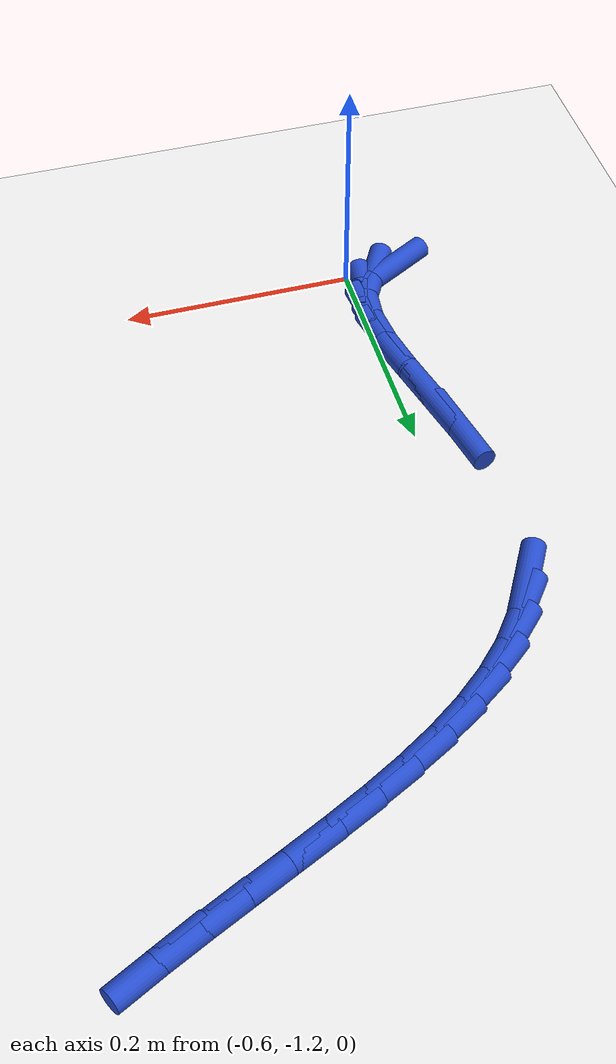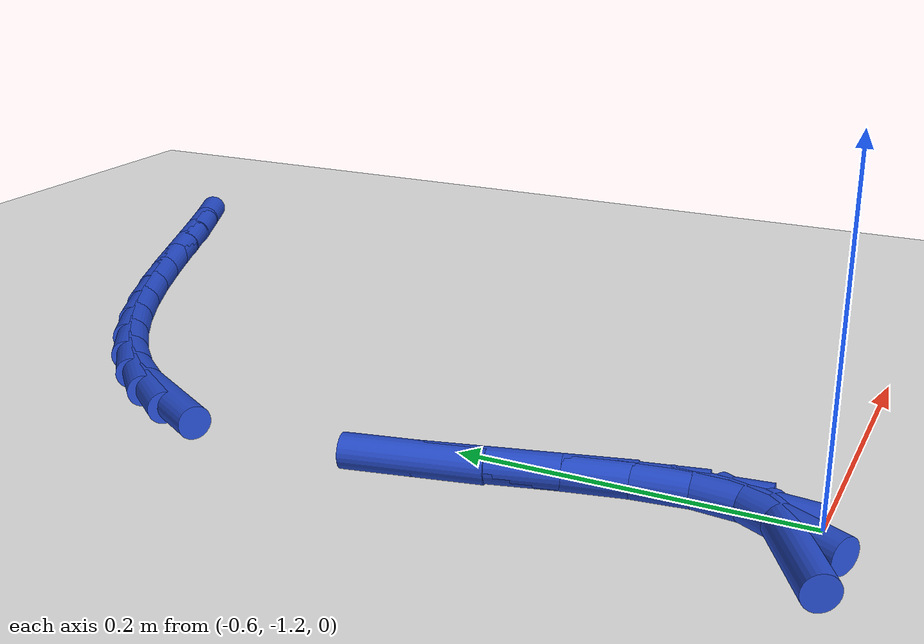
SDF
<sdf version="1.6">
 <world name="default">
  <model name="ground_plane">
   <static>1</static>
   <link name="link">
    <collision name="collision">
     <geometry><plane><normal>0 0 1</normal><size>100 100</size></plane></geometry>
     <surface><friction><ode><mu>100</mu><mu2>50</mu2></ode></friction></surface>
    </collision>
    <visual name="visual">
     <cast_shadows>0</cast_shadows>
     <geometry><plane><normal>0 0 1</normal><size>100 100</size></plane></geometry>
     <material>
      <script><uri>file://media/materials/scripts/gazebo.material</uri><name>Gazebo/WhiteGlow</name></script>
     </material>
    </visual>
   </link>
  </model>
  <model name="line">
   <link name="link_204">
    <pose>-0.6393027703442349 -1.193815876135804 0.01 0 1.57 0.5169539969103331</pose>
    <collision name="collision">
     <geometry><cylinder><radius>0.01</radius><length>0.08</length></cylinder></geometry>
    </collision>
    <visual name="visual">
     <material>
      <script><name>Gazebo/Blue</name><uri>file://media/materials/scripts/gazebo.material</uri></script>
     </material>
     <geometry><cylinder><radius>0.01</radius><length>0.08</length></cylinder></geometry>
    </visual>
   </link>
   <link name="link_205">
    <pose>-0.6184387353778499 -1.1819541653858383 0.01 0 1.57 1.0733820155886629</pose>
    <collision name="collision">
     <geometry><cylinder><radius>0.01</radius><length>0.08</length></cylinder></geometry>
    </collision>
    <visual name="visual">
     <material>
      <script><name>Gazebo/Blue</name><uri>file://media/materials/scripts/gazebo.material</uri></script>
     </material>
     <geometry><cylinder><radius>0.01</radius><length>0.08</length></cylinder></geometry>
    </visual>
   </link>
   <link name="link_206">
    <pose>-0.6075629247144526 -1.1619231977633466 0.01 0 1.57 1.4661215003357893</pose>
    <collision name="collision">
     <geometry><cylinder><radius>0.01</radius><length>0.08</length></cylinder></geometry>
    </collision>
    <visual name="visual">
     <material>
      <script><name>Gazebo/Blue</name><uri>file://media/materials/scripts/gazebo.material</uri></script>
     </material>
     <geometry><cylinder><radius>0.01</radius><length>0.08</length></cylinder></geometry>
    </visual>
   </link>
   <link name="link_207">
    <pose>-0.6047509226405833 -1.1351572172562172 0.01 0 1.57 -1.4687080988675323</pose>
    <collision name="collision">
     <geometry><cylinder><radius>0.01</radius><length>0.08</length></cylinder></geometry>
    </collision>
    <visual name="visual">
     <material>
      <script><name>Gazebo/Blue</name><uri>file://media/materials/scripts/gazebo.material</uri></script>
     </material>
     <geometry><cylinder><radius>0.01</radius><length>0.08</length></cylinder></geometry>
    </visual>
   </link>
   <link name="link_208">
    <pose>-0.6080336997283371 -1.1031127313438176 0.01 0 1.57 -1.3671025514627106</pose>
    <collision name="collision">
     <geometry><cylinder><radius>0.01</radius><length>0.08</length></cylinder></geometry>
    </collision>
    <visual name="visual">
     <material>
      <script><name>Gazebo/Blue</name><uri>file://media/materials/scripts/gazebo.material</uri></script>
     </material>
     <geometry><cylinder><radius>0.01</radius><length>0.08</length></cylinder></geometry>
    </visual>
   </link>
   <link name="link_209">
    <pose>-0.6154422265498084 -1.0672462475055156 0.01 0 1.57 -1.3256391070641629</pose>
    <collision name="collision">
     <geometry><cylinder><radius>0.01</radius><length>0.08</length></cylinder></geometry>
    </collision>
    <visual name="visual">
     <material>
      <script><name>Gazebo/Blue</name><uri>file://media/materials/scripts/gazebo.material</uri></script>
     </material>
     <geometry><cylinder><radius>0.01</radius><length>0.08</length></cylinder></geometry>
    </visual>
   </link>
   <link name="link_210">
    <pose>-0.6250074736770934 -1.0290142732206762 0.01 0 1.57 -1.3265945258423315</pose>
    <collision name="collision">
     <geometry><cylinder><radius>0.01</radius><length>0.08</length></cylinder></geometry>
    </collision>
    <visual name="visual">
     <material>
      <script><name>Gazebo/Blue</name><uri>file://media/materials/scripts/gazebo.material</uri></script>
     </material>
     <geometry><cylinder><radius>0.01</radius><length>0.08</length></cylinder></geometry>
    </visual>
   </link>
   <link name="link_211">
    <pose>-0.6347604116822865 -0.9898733159686672 0.01 0 1.57 -1.3671075668566923</pose>
    <collision name="collision">
     <geometry><cylinder><radius>0.01</radius><length>0.08</length></cylinder></geometry>
    </collision>
    <visual name="visual">
     <material>
      <script><name>Gazebo/Blue</name><uri>file://media/materials/scripts/gazebo.material</uri></script>
     </material>
     <geometry><cylinder><radius>0.01</radius><length>0.08</length></cylinder></geometry>
    </visual>
   </link>
   <link name="link_216">
    <pose>-0.6300640519701994 -0.8224018717985248 0.01 0 1.57 1.0592432622311687</pose>
    <collision name="collision">
     <geometry><cylinder><radius>0.01</radius><length>0.08</length></cylinder></geometry>
    </collision>
    <visual name="visual">
     <material>
      <script><name>Gazebo/Blue</name><uri>file://media/materials/scripts/gazebo.material</uri></script>
     </material>
     <geometry><cylinder><radius>0.01</radius><length>0.08</length></cylinder></geometry>
    </visual>
   </link>
   <link name="link_217">
    <pose>-0.6156878595406532 -0.7967940953074912 0.01 0 1.57 0.9138076420204834</pose>
    <collision name="collision">
     <geometry><cylinder><radius>0.01</radius><length>0.08</length></cylinder></geometry>
    </collision>
    <visual name="visual">
     <material>
      <script><name>Gazebo/Blue</name><uri>file://media/materials/scripts/gazebo.material</uri></script>
     </material>
     <geometry><cylinder><radius>0.01</radius><length>0.08</length></cylinder></geometry>
    </visual>
   </link>
   <link name="link_218">
    <pose>-0.5976033084764459 -0.7733469773867567 0.01 0 1.57 0.7887113398685164</pose>
    <collision name="collision">
     <geometry><cylinder><radius>0.01</radius><length>0.08</length></cylinder></geometry>
    </collision>
    <visual name="visual">
     <material>
      <script><name>Gazebo/Blue</name><uri>file://media/materials/scripts/gazebo.material</uri></script>
     </material>
     <geometry><cylinder><radius>0.01</radius><length>0.08</length></cylinder></geometry>
    </visual>
   </link>
   <link name="link_219">
    <pose>-0.5762091079255934 -0.7518105395344056 0.01 0 1.57 0.6854759045045983</pose>
    <collision name="collision">
     <geometry><cylinder><radius>0.01</radius><length>0.08</length></cylinder></geometry>
    </collision>
    <visual name="visual">
     <material>
      <script><name>Gazebo/Blue</name><uri>file://media/materials/scripts/gazebo.material</uri></script>
     </material>
     <geometry><cylinder><radius>0.01</radius><length>0.08</length></cylinder></geometry>
    </visual>
   </link>
   <link name="link_220">
    <pose>-0.5519039670361112 -0.7319348032485227 0.01 0 1.57 0.6029977597500211</pose>
    <collision name="collision">
     <geometry><cylinder><radius>0.01</radius><length>0.08</length></cylinder></geometry>
    </collision>
    <visual name="visual">
     <material>
      <script><name>Gazebo/Blue</name><uri>file://media/materials/scripts/gazebo.material</uri></script>
     </material>
     <geometry><cylinder><radius>0.01</radius><length>0.08</length></cylinder></geometry>
    </visual>
   </link>
   <link name="link_221">
    <pose>-0.525086594956015 -0.7134697900271922 0.01 0 1.57 0.5390391133263199</pose>
    <collision name="collision">
     <geometry><cylinder><radius>0.01</radius><length>0.08</length></cylinder></geometry>
    </collision>
    <visual name="visual">
     <material>
      <script><name>Gazebo/Blue</name><uri>file://media/materials/scripts/gazebo.material</uri></script>
     </material>
     <geometry><cylinder><radius>0.01</radius><length>0.08</length></cylinder></geometry>
    </visual>
   </link>
   <link name="link_222">
    <pose>-0.4961557008333201 -0.6961655213684986 0.01 0 1.57 0.4912045173694662</pose>
    <collision name="collision">
     <geometry><cylinder><radius>0.01</radius><length>0.08</length></cylinder></geometry>
    </collision>
    <visual name="visual">
     <material>
      <script><name>Gazebo/Blue</name><uri>file://media/materials/scripts/gazebo.material</uri></script>
     </material>
     <geometry><cylinder><radius>0.01</radius><length>0.08</length></cylinder></geometry>
    </visual>
   </link>
   <link name="link_223">
    <pose>-0.4655099938160424 -0.6797720187705272 0.01 0 1.57 0.457416161737285</pose>
    <collision name="collision">
     <geometry><cylinder><radius>0.01</radius><length>0.08</length></cylinder></geometry>
    </collision>
    <visual name="visual">
     <material>
      <script><name>Gazebo/Blue</name><uri>file://media/materials/scripts/gazebo.material</uri></script>
     </material>
     <geometry><cylinder><radius>0.01</radius><length>0.08</length></cylinder></geometry>
    </visual>
   </link>
   <link name="link_224">
    <pose>-0.4335481830521973 -0.6640393037313614 0.01 0 1.57 0.43608447944780115</pose>
    <collision name="collision">
     <geometry><cylinder><radius>0.01</radius><length>0.08</length></cylinder></geometry>
    </collision>
    <visual name="visual">
     <material>
      <script><name>Gazebo/Blue</name><uri>file://media/materials/scripts/gazebo.material</uri></script>
     </material>
     <geometry><cylinder><radius>0.01</radius><length>0.08</length></cylinder></geometry>
    </visual>
   </link>
   <link name="link_225">
    <pose>-0.4006689776898006 -0.6487173977490865 0.01 0 1.57 0.42613644371508747</pose>
    <collision name="collision">
     <geometry><cylinder><radius>0.01</radius><length>0.08</length></cylinder></geometry>
    </collision>
    <visual name="visual">
     <material>
      <script><name>Gazebo/Blue</name><uri>file://media/materials/scripts/gazebo.material</uri></script>
     </material>
     <geometry><cylinder><radius>0.01</radius><length>0.08</length></cylinder></geometry>
    </visual>
   </link>
   <link name="link_226">
    <pose>-0.3672710868768678 -0.6335563223217872 0.01 0 1.57 0.42699410149121175</pose>
    <collision name="collision">
     <geometry><cylinder><radius>0.01</radius><length>0.08</length></cylinder></geometry>
    </collision>
    <visual name="visual">
     <material>
      <script><name>Gazebo/Blue</name><uri>file://media/materials/scripts/gazebo.material</uri></script>
     </material>
     <geometry><cylinder><radius>0.01</radius><length>0.08</length></cylinder></geometry>
    </visual>
   </link>
   <link name="link_227">
    <pose>-0.3337532197614145 -0.6183060989475471 0.01 0 1.57 0.4385463339232939</pose>
    <collision name="collision">
     <geometry><cylinder><radius>0.01</radius><length>0.08</length></cylinder></geometry>
    </collision>
    <visual name="visual">
     <material>
      <script><name>Gazebo/Blue</name><uri>file://media/materials/scripts/gazebo.material</uri></script>
     </material>
     <geometry><cylinder><radius>0.01</radius><length>0.08</length></cylinder></geometry>
    </visual>
   </link>
   <link name="link_228">
    <pose>-0.3005140854914562 -0.6027167491244514 0.01 0 1.57 0.46112881856086846</pose>
    <collision name="collision">
     <geometry><cylinder><radius>0.01</radius><length>0.08</length></cylinder></geometry>
    </collision>
    <visual name="visual">
     <material>
      <script><name>Gazebo/Blue</name><uri>file://media/materials/scripts/gazebo.material</uri></script>
     </material>
     <geometry><cylinder><radius>0.01</radius><length>0.08</length></cylinder></geometry>
    </visual>
   </link>
  </model>
 </world>
</sdf>
